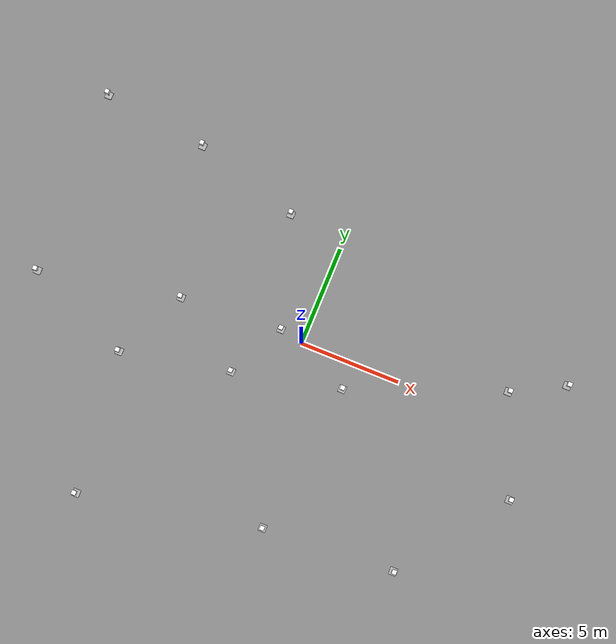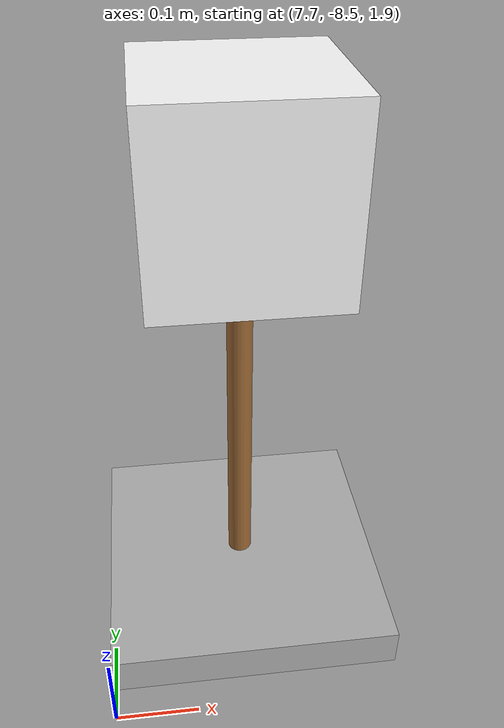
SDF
<sdf version="1.7">
 <world name="marsyard">
  <gravity>0 0 -9.81</gravity>
  <physics name="dart_physics" type="ignored">
   <max_step_size>0.003</max_step_size>
   <real_time_update_rate>333</real_time_update_rate>
   <real_time_factor>1.0</real_time_factor>
  </physics>
  <plugin filename="ignition-gazebo-physics-system" name="ignition::gazebo::systems::Physics"/>
  <plugin filename="ignition-gazebo-user-commands-system" name="ignition::gazebo::systems::UserCommands"/>
  <plugin filename="ignition-gazebo-scene-broadcaster-system" name="ignition::gazebo::systems::SceneBroadcaster"/>
  <plugin filename="ignition-gazebo-contact-system" name="ignition::gazebo::systems::Contact"/>
  <scene>
   <ambient>0.95 0.95 0.95 1</ambient>
   <background>0.70 0.70 0.70 1</background>
   <shadows>false</shadows>
  </scene>
  <light type="directional" name="sun">
   <cast_shadows>false</cast_shadows>
   <pose>0 0 30 0 0 0</pose>
   <diffuse>1 1 1 1</diffuse>
   <specular>0.15 0.15 0.15 1</specular>
   <direction>-0.35 0.1 -0.93</direction>
  </light>
  <model name="ArUco_51">
   <static>true</static>
   <pose>-12.8626 -1.6754 1.1724 0.0000 0.0000 0.0000</pose>
   <include><uri>model://aruco_1</uri></include>
  </model>
  <model name="ArUco_52">
   <static>true</static>
   <pose>-6.9112 -10.5555 1.1742 0.0000 0.0000 0.0000</pose>
   <include><uri>model://aruco_2</uri></include>
  </model>
  <model name="ArUco_53">
   <static>true</static>
   <pose>-7.7269 -3.7522 1.1445 0.0000 0.0000 0.0000</pose>
   <include><uri>model://aruco_3</uri></include>
  </model>
  <model name="ArUco_54">
   <static>true</static>
   <pose>-2.4448 -2.6740 1.4944 0.0000 0.0000 0.0000</pose>
   <include><uri>model://aruco_4</uri></include>
  </model>
  <model name="ArUco_55">
   <static>true</static>
   <pose>1.6623 -8.7646 1.2080 0.0000 0.0000 0.0000</pose>
   <include><uri>model://aruco_5</uri></include>
  </model>
  <model name="ArUco_56">
   <static>true</static>
   <pose>7.8746 -8.3014 1.9224 0.0000 0.0000 0.0000</pose>
   <include><uri>model://aruco_6</uri></include>
  </model>
  <model name="ArUco_57">
   <static>true</static>
   <pose>11.7097 -3.2808 1.2173 0.0000 0.0000 0.0000</pose>
   <include><uri>model://aruco_7</uri></include>
  </model>
  <model name="ArUco_58">
   <static>true</static>
   <pose>12.3320 2.6813 1.2706 0.0000 0.0000 0.0000</pose>
   <include><uri>model://aruco_8</uri></include>
  </model>
  <model name="ArUco_59">
   <static>true</static>
   <pose>9.8693 1.3461 1.4321 0.0000 0.0000 0.0000</pose>
   <include><uri>model://aruco_9</uri></include>
  </model>
  <model name="ArUco_60">
   <static>true</static>
   <pose>2.6570 -1.4837 1.5868 0.0000 0.0000 0.0000</pose>
   <include><uri>model://aruco_10</uri></include>
  </model>
  <model name="ArUco_61">
   <static>true</static>
   <pose>-1.0969 0.1368 0.8390 0.0000 0.0000 0.0000</pose>
   <include><uri>model://aruco_11</uri></include>
  </model>
  <model name="ArUco_62">
   <static>true</static>
   <pose>-2.7377 5.3769 1.3454 0.0000 0.0000 0.0000</pose>
   <include><uri>model://aruco_12</uri></include>
  </model>
  <model name="ArUco_63">
   <static>true</static>
   <pose>-5.9985 -0.3173 1.3624 0.0000 0.0000 0.0000</pose>
   <include><uri>model://aruco_13</uri></include>
  </model>
  <model name="ArUco_64">
   <static>true</static>
   <pose>-7.9646 6.9120 1.2799 0.0000 0.0000 0.0000</pose>
   <include><uri>model://aruco_14</uri></include>
  </model>
  <model name="ArUco_65">
   <static>true</static>
   <pose>-13.2124 7.5601 1.1864 0.0000 0.0000 0.0000</pose>
   <include><uri>model://aruco_15</uri></include>
  </model>
 </world>
</sdf>

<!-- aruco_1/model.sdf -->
<sdf version="1.6">
  <model name="aruco_1">
    <static>true</static>
    <link name="link">
      <!-- Concrete Base -->
      <visual name="base_visual">
        <pose>0 0 0.025 0 0 0</pose>
        <geometry>
          <box>
            <size>0.35 0.35 0.05</size>
          </box>
        </geometry>
        <material>
          <ambient>0.7 0.7 0.7 1</ambient>
          <diffuse>0.7 0.7 0.7 1</diffuse>
        </material>
      </visual>
      <collision name="base_collision">
        <pose>0 0 0.025 0 0 0</pose>
        <geometry>
          <box>
            <size>0.35 0.35 0.05</size>
          </box>
        </geometry>
      </collision>

      <!-- Wooden Pole -->
      <visual name="pole_visual">
        <pose>0 0 0.26 0 0 0</pose>
        <geometry>
          <cylinder>
            <radius>0.015</radius>
            <length>0.42</length>
          </cylinder>
        </geometry>
        <material>
          <ambient>0.6 0.4 0.2 1</ambient>
          <diffuse>0.6 0.4 0.2 1</diffuse>
        </material>
      </visual>
      <collision name="pole_collision">
        <pose>0 0 0.26 0 0 0</pose>
        <geometry>
          <cylinder>
            <radius>0.015</radius>
            <length>0.42</length>
          </cylinder>
        </geometry>
      </collision>

      <!-- Head Box with ArUco Texture -->
      <visual name="head_visual">
        <pose>0 0 0.575 0 0 0</pose>
        <geometry>
          <box>
            <size>0.21 0.21 0.21</size>
          </box>
        </geometry>
        <material>
          <ambient>1 1 1 1</ambient>
          <diffuse>1 1 1 1</diffuse>
          <pbr>
            <metal>
              <albedo_map>model://aruco_1/materials/textures/marker_1.png</albedo_map>
            </metal>
          </pbr>
        </material>
      </visual>
      <collision name="head_collision">
        <pose>0 0 0.575 0 0 0</pose>
        <geometry>
          <box>
            <size>0.21 0.21 0.21</size>
          </box>
        </geometry>
      </collision>
    </link>
  </model>
</sdf>

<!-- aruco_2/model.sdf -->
<sdf version="1.6">
  <model name="aruco_2">
    <static>true</static>
    <link name="link">
      <!-- Concrete Base -->
      <visual name="base_visual">
        <pose>0 0 0.025 0 0 0</pose>
        <geometry>
          <box>
            <size>0.35 0.35 0.05</size>
          </box>
        </geometry>
        <material>
          <ambient>0.7 0.7 0.7 1</ambient>
          <diffuse>0.7 0.7 0.7 1</diffuse>
        </material>
      </visual>
      <collision name="base_collision">
        <pose>0 0 0.025 0 0 0</pose>
        <geometry>
          <box>
            <size>0.35 0.35 0.05</size>
          </box>
        </geometry>
      </collision>

      <!-- Wooden Pole -->
      <visual name="pole_visual">
        <pose>0 0 0.26 0 0 0</pose>
        <geometry>
          <cylinder>
            <radius>0.015</radius>
            <length>0.42</length>
          </cylinder>
        </geometry>
        <material>
          <ambient>0.6 0.4 0.2 1</ambient>
          <diffuse>0.6 0.4 0.2 1</diffuse>
        </material>
      </visual>
      <collision name="pole_collision">
        <pose>0 0 0.26 0 0 0</pose>
        <geometry>
          <cylinder>
            <radius>0.015</radius>
            <length>0.42</length>
          </cylinder>
        </geometry>
      </collision>

      <!-- Head Box with ArUco Texture -->
      <visual name="head_visual">
        <pose>0 0 0.575 0 0 0</pose>
        <geometry>
          <box>
            <size>0.21 0.21 0.21</size>
          </box>
        </geometry>
        <material>
          <ambient>1 1 1 1</ambient>
          <diffuse>1 1 1 1</diffuse>
          <pbr>
            <metal>
              <albedo_map>model://aruco_2/materials/textures/marker_2.png</albedo_map>
            </metal>
          </pbr>
        </material>
      </visual>
      <collision name="head_collision">
        <pose>0 0 0.575 0 0 0</pose>
        <geometry>
          <box>
            <size>0.21 0.21 0.21</size>
          </box>
        </geometry>
      </collision>
    </link>
  </model>
</sdf>

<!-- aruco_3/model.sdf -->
<sdf version="1.6">
  <model name="aruco_3">
    <static>true</static>
    <link name="link">
      <!-- Concrete Base -->
      <visual name="base_visual">
        <pose>0 0 0.025 0 0 0</pose>
        <geometry>
          <box>
            <size>0.35 0.35 0.05</size>
          </box>
        </geometry>
        <material>
          <ambient>0.7 0.7 0.7 1</ambient>
          <diffuse>0.7 0.7 0.7 1</diffuse>
        </material>
      </visual>
      <collision name="base_collision">
        <pose>0 0 0.025 0 0 0</pose>
        <geometry>
          <box>
            <size>0.35 0.35 0.05</size>
          </box>
        </geometry>
      </collision>

      <!-- Wooden Pole -->
      <visual name="pole_visual">
        <pose>0 0 0.26 0 0 0</pose>
        <geometry>
          <cylinder>
            <radius>0.015</radius>
            <length>0.42</length>
          </cylinder>
        </geometry>
        <material>
          <ambient>0.6 0.4 0.2 1</ambient>
          <diffuse>0.6 0.4 0.2 1</diffuse>
        </material>
      </visual>
      <collision name="pole_collision">
        <pose>0 0 0.26 0 0 0</pose>
        <geometry>
          <cylinder>
            <radius>0.015</radius>
            <length>0.42</length>
          </cylinder>
        </geometry>
      </collision>

      <!-- Head Box with ArUco Texture -->
      <visual name="head_visual">
        <pose>0 0 0.575 0 0 0</pose>
        <geometry>
          <box>
            <size>0.21 0.21 0.21</size>
          </box>
        </geometry>
        <material>
          <ambient>1 1 1 1</ambient>
          <diffuse>1 1 1 1</diffuse>
          <pbr>
            <metal>
              <albedo_map>model://aruco_3/materials/textures/marker_3.png</albedo_map>
            </metal>
          </pbr>
        </material>
      </visual>
      <collision name="head_collision">
        <pose>0 0 0.575 0 0 0</pose>
        <geometry>
          <box>
            <size>0.21 0.21 0.21</size>
          </box>
        </geometry>
      </collision>
    </link>
  </model>
</sdf>

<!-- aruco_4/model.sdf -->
<sdf version="1.6">
  <model name="aruco_4">
    <static>true</static>
    <link name="link">
      <!-- Concrete Base -->
      <visual name="base_visual">
        <pose>0 0 0.025 0 0 0</pose>
        <geometry>
          <box>
            <size>0.35 0.35 0.05</size>
          </box>
        </geometry>
        <material>
          <ambient>0.7 0.7 0.7 1</ambient>
          <diffuse>0.7 0.7 0.7 1</diffuse>
        </material>
      </visual>
      <collision name="base_collision">
        <pose>0 0 0.025 0 0 0</pose>
        <geometry>
          <box>
            <size>0.35 0.35 0.05</size>
          </box>
        </geometry>
      </collision>

      <!-- Wooden Pole -->
      <visual name="pole_visual">
        <pose>0 0 0.26 0 0 0</pose>
        <geometry>
          <cylinder>
            <radius>0.015</radius>
            <length>0.42</length>
          </cylinder>
        </geometry>
        <material>
          <ambient>0.6 0.4 0.2 1</ambient>
          <diffuse>0.6 0.4 0.2 1</diffuse>
        </material>
      </visual>
      <collision name="pole_collision">
        <pose>0 0 0.26 0 0 0</pose>
        <geometry>
          <cylinder>
            <radius>0.015</radius>
            <length>0.42</length>
          </cylinder>
        </geometry>
      </collision>

      <!-- Head Box with ArUco Texture -->
      <visual name="head_visual">
        <pose>0 0 0.575 0 0 0</pose>
        <geometry>
          <box>
            <size>0.21 0.21 0.21</size>
          </box>
        </geometry>
        <material>
          <ambient>1 1 1 1</ambient>
          <diffuse>1 1 1 1</diffuse>
          <pbr>
            <metal>
              <albedo_map>model://aruco_4/materials/textures/marker_4.png</albedo_map>
            </metal>
          </pbr>
        </material>
      </visual>
      <collision name="head_collision">
        <pose>0 0 0.575 0 0 0</pose>
        <geometry>
          <box>
            <size>0.21 0.21 0.21</size>
          </box>
        </geometry>
      </collision>
    </link>
  </model>
</sdf>

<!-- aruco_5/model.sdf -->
<sdf version="1.6">
  <model name="aruco_5">
    <static>true</static>
    <link name="link">
      <!-- Concrete Base -->
      <visual name="base_visual">
        <pose>0 0 0.025 0 0 0</pose>
        <geometry>
          <box>
            <size>0.35 0.35 0.05</size>
          </box>
        </geometry>
        <material>
          <ambient>0.7 0.7 0.7 1</ambient>
          <diffuse>0.7 0.7 0.7 1</diffuse>
        </material>
      </visual>
      <collision name="base_collision">
        <pose>0 0 0.025 0 0 0</pose>
        <geometry>
          <box>
            <size>0.35 0.35 0.05</size>
          </box>
        </geometry>
      </collision>

      <!-- Wooden Pole -->
      <visual name="pole_visual">
        <pose>0 0 0.26 0 0 0</pose>
        <geometry>
          <cylinder>
            <radius>0.015</radius>
            <length>0.42</length>
          </cylinder>
        </geometry>
        <material>
          <ambient>0.6 0.4 0.2 1</ambient>
          <diffuse>0.6 0.4 0.2 1</diffuse>
        </material>
      </visual>
      <collision name="pole_collision">
        <pose>0 0 0.26 0 0 0</pose>
        <geometry>
          <cylinder>
            <radius>0.015</radius>
            <length>0.42</length>
          </cylinder>
        </geometry>
      </collision>

      <!-- Head Box with ArUco Texture -->
      <visual name="head_visual">
        <pose>0 0 0.575 0 0 0</pose>
        <geometry>
          <box>
            <size>0.21 0.21 0.21</size>
          </box>
        </geometry>
        <material>
          <ambient>1 1 1 1</ambient>
          <diffuse>1 1 1 1</diffuse>
          <pbr>
            <metal>
              <albedo_map>model://aruco_5/materials/textures/marker_5.png</albedo_map>
            </metal>
          </pbr>
        </material>
      </visual>
      <collision name="head_collision">
        <pose>0 0 0.575 0 0 0</pose>
        <geometry>
          <box>
            <size>0.21 0.21 0.21</size>
          </box>
        </geometry>
      </collision>
    </link>
  </model>
</sdf>

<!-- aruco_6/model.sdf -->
<sdf version="1.6">
  <model name="aruco_6">
    <static>true</static>
    <link name="link">
      <!-- Concrete Base -->
      <visual name="base_visual">
        <pose>0 0 0.025 0 0 0</pose>
        <geometry>
          <box>
            <size>0.35 0.35 0.05</size>
          </box>
        </geometry>
        <material>
          <ambient>0.7 0.7 0.7 1</ambient>
          <diffuse>0.7 0.7 0.7 1</diffuse>
        </material>
      </visual>
      <collision name="base_collision">
        <pose>0 0 0.025 0 0 0</pose>
        <geometry>
          <box>
            <size>0.35 0.35 0.05</size>
          </box>
        </geometry>
      </collision>

      <!-- Wooden Pole -->
      <visual name="pole_visual">
        <pose>0 0 0.26 0 0 0</pose>
        <geometry>
          <cylinder>
            <radius>0.015</radius>
            <length>0.42</length>
          </cylinder>
        </geometry>
        <material>
          <ambient>0.6 0.4 0.2 1</ambient>
          <diffuse>0.6 0.4 0.2 1</diffuse>
        </material>
      </visual>
      <collision name="pole_collision">
        <pose>0 0 0.26 0 0 0</pose>
        <geometry>
          <cylinder>
            <radius>0.015</radius>
            <length>0.42</length>
          </cylinder>
        </geometry>
      </collision>

      <!-- Head Box with ArUco Texture -->
      <visual name="head_visual">
        <pose>0 0 0.575 0 0 0</pose>
        <geometry>
          <box>
            <size>0.21 0.21 0.21</size>
          </box>
        </geometry>
        <material>
          <ambient>1 1 1 1</ambient>
          <diffuse>1 1 1 1</diffuse>
          <pbr>
            <metal>
              <albedo_map>model://aruco_6/materials/textures/marker_6.png</albedo_map>
            </metal>
          </pbr>
        </material>
      </visual>
      <collision name="head_collision">
        <pose>0 0 0.575 0 0 0</pose>
        <geometry>
          <box>
            <size>0.21 0.21 0.21</size>
          </box>
        </geometry>
      </collision>
    </link>
  </model>
</sdf>

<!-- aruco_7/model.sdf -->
<sdf version="1.6">
  <model name="aruco_7">
    <static>true</static>
    <link name="link">
      <visual name="base_visual">
        <pose>0 0 0.025 0 0 0</pose>
        <geometry>
          <box>
            <size>0.35 0.35 0.05</size>
          </box>
        </geometry>
        <material>
          <ambient>0.7 0.7 0.7 1</ambient>
          <diffuse>0.7 0.7 0.7 1</diffuse>
        </material>
      </visual>
      <collision name="base_collision">
        <pose>0 0 0.025 0 0 0</pose>
        <geometry>
          <box>
            <size>0.35 0.35 0.05</size>
          </box>
        </geometry>
      </collision>
      <visual name="pole_visual">
        <pose>0 0 0.228500 0 0 0</pose>
        <geometry>
          <cylinder>
            <radius>0.015</radius>
            <length>0.357000</length>
          </cylinder>
        </geometry>
        <material>
          <ambient>0.6 0.4 0.2 1</ambient>
          <diffuse>0.6 0.4 0.2 1</diffuse>
        </material>
      </visual>
      <collision name="pole_collision">
        <pose>0 0 0.228500 0 0 0</pose>
        <geometry>
          <cylinder>
            <radius>0.015</radius>
            <length>0.357000</length>
          </cylinder>
        </geometry>
      </collision>
      <visual name="head_visual">
        <pose>0 0 0.496250 0 0 0</pose>
        <geometry>
          <box>
            <size>0.21 0.21 0.21</size>
          </box>
        </geometry>
        <material>
          <ambient>1 1 1 1</ambient>
          <diffuse>1 1 1 1</diffuse>
          <pbr>
            <metal>
              <albedo_map>model://aruco_7/materials/textures/marker_7.png</albedo_map>
            </metal>
          </pbr>
        </material>
      </visual>
      <collision name="head_collision">
        <pose>0 0 0.496250 0 0 0</pose>
        <geometry>
          <box>
            <size>0.21 0.21 0.21</size>
          </box>
        </geometry>
      </collision>
    </link>
  </model>
</sdf>

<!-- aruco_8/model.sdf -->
<sdf version="1.6">
  <model name="aruco_8">
    <static>true</static>
    <link name="link">
      <!-- Concrete Base -->
      <visual name="base_visual">
        <pose>0 0 0.025 0 0 0</pose>
        <geometry>
          <box>
            <size>0.35 0.35 0.05</size>
          </box>
        </geometry>
        <material>
          <ambient>0.7 0.7 0.7 1</ambient>
          <diffuse>0.7 0.7 0.7 1</diffuse>
        </material>
      </visual>
      <collision name="base_collision">
        <pose>0 0 0.025 0 0 0</pose>
        <geometry>
          <box>
            <size>0.35 0.35 0.05</size>
          </box>
        </geometry>
      </collision>

      <!-- Wooden Pole -->
      <visual name="pole_visual">
        <pose>0 0 0.26 0 0 0</pose>
        <geometry>
          <cylinder>
            <radius>0.015</radius>
            <length>0.42</length>
          </cylinder>
        </geometry>
        <material>
          <ambient>0.6 0.4 0.2 1</ambient>
          <diffuse>0.6 0.4 0.2 1</diffuse>
        </material>
      </visual>
      <collision name="pole_collision">
        <pose>0 0 0.26 0 0 0</pose>
        <geometry>
          <cylinder>
            <radius>0.015</radius>
            <length>0.42</length>
          </cylinder>
        </geometry>
      </collision>

      <!-- Head Box with ArUco Texture -->
      <visual name="head_visual">
        <pose>0 0 0.575 0 0 0</pose>
        <geometry>
          <box>
            <size>0.21 0.21 0.21</size>
          </box>
        </geometry>
        <material>
          <ambient>1 1 1 1</ambient>
          <diffuse>1 1 1 1</diffuse>
          <pbr>
            <metal>
              <albedo_map>model://aruco_8/materials/textures/marker_8.png</albedo_map>
            </metal>
          </pbr>
        </material>
      </visual>
      <collision name="head_collision">
        <pose>0 0 0.575 0 0 0</pose>
        <geometry>
          <box>
            <size>0.21 0.21 0.21</size>
          </box>
        </geometry>
      </collision>
    </link>
  </model>
</sdf>

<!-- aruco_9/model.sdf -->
<sdf version="1.6">
  <model name="aruco_9">
    <static>true</static>
    <link name="link">
      <!-- Concrete Base -->
      <visual name="base_visual">
        <pose>0 0 0.025 0 0 0</pose>
        <geometry>
          <box>
            <size>0.35 0.35 0.05</size>
          </box>
        </geometry>
        <material>
          <ambient>0.7 0.7 0.7 1</ambient>
          <diffuse>0.7 0.7 0.7 1</diffuse>
        </material>
      </visual>
      <collision name="base_collision">
        <pose>0 0 0.025 0 0 0</pose>
        <geometry>
          <box>
            <size>0.35 0.35 0.05</size>
          </box>
        </geometry>
      </collision>

      <!-- Wooden Pole -->
      <visual name="pole_visual">
        <pose>0 0 0.26 0 0 0</pose>
        <geometry>
          <cylinder>
            <radius>0.015</radius>
            <length>0.42</length>
          </cylinder>
        </geometry>
        <material>
          <ambient>0.6 0.4 0.2 1</ambient>
          <diffuse>0.6 0.4 0.2 1</diffuse>
        </material>
      </visual>
      <collision name="pole_collision">
        <pose>0 0 0.26 0 0 0</pose>
        <geometry>
          <cylinder>
            <radius>0.015</radius>
            <length>0.42</length>
          </cylinder>
        </geometry>
      </collision>

      <!-- Head Box with ArUco Texture -->
      <visual name="head_visual">
        <pose>0 0 0.575 0 0 0</pose>
        <geometry>
          <box>
            <size>0.21 0.21 0.21</size>
          </box>
        </geometry>
        <material>
          <ambient>1 1 1 1</ambient>
          <diffuse>1 1 1 1</diffuse>
          <pbr>
            <metal>
              <albedo_map>model://aruco_9/materials/textures/marker_9.png</albedo_map>
            </metal>
          </pbr>
        </material>
      </visual>
      <collision name="head_collision">
        <pose>0 0 0.575 0 0 0</pose>
        <geometry>
          <box>
            <size>0.21 0.21 0.21</size>
          </box>
        </geometry>
      </collision>
    </link>
  </model>
</sdf>

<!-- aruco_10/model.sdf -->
<sdf version="1.6">
  <model name="aruco_10">
    <static>true</static>
    <link name="link">
      <!-- Concrete Base -->
      <visual name="base_visual">
        <pose>0 0 0.025 0 0 0</pose>
        <geometry>
          <box>
            <size>0.35 0.35 0.05</size>
          </box>
        </geometry>
        <material>
          <ambient>0.7 0.7 0.7 1</ambient>
          <diffuse>0.7 0.7 0.7 1</diffuse>
        </material>
      </visual>
      <collision name="base_collision">
        <pose>0 0 0.025 0 0 0</pose>
        <geometry>
          <box>
            <size>0.35 0.35 0.05</size>
          </box>
        </geometry>
      </collision>

      <!-- Wooden Pole -->
      <visual name="pole_visual">
        <pose>0 0 0.26 0 0 0</pose>
        <geometry>
          <cylinder>
            <radius>0.015</radius>
            <length>0.42</length>
          </cylinder>
        </geometry>
        <material>
          <ambient>0.6 0.4 0.2 1</ambient>
          <diffuse>0.6 0.4 0.2 1</diffuse>
        </material>
      </visual>
      <collision name="pole_collision">
        <pose>0 0 0.26 0 0 0</pose>
        <geometry>
          <cylinder>
            <radius>0.015</radius>
            <length>0.42</length>
          </cylinder>
        </geometry>
      </collision>

      <!-- Head Box with ArUco Texture -->
      <visual name="head_visual">
        <pose>0 0 0.575 0 0 0</pose>
        <geometry>
          <box>
            <size>0.21 0.21 0.21</size>
          </box>
        </geometry>
        <material>
          <ambient>1 1 1 1</ambient>
          <diffuse>1 1 1 1</diffuse>
          <pbr>
            <metal>
              <albedo_map>model://aruco_10/materials/textures/marker_10.png</albedo_map>
            </metal>
          </pbr>
        </material>
      </visual>
      <collision name="head_collision">
        <pose>0 0 0.575 0 0 0</pose>
        <geometry>
          <box>
            <size>0.21 0.21 0.21</size>
          </box>
        </geometry>
      </collision>
    </link>
  </model>
</sdf>

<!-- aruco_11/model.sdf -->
<sdf version="1.6">
  <model name="aruco_11">
    <static>true</static>
    <link name="link">
      <!-- Concrete Base -->
      <visual name="base_visual">
        <pose>0 0 0.025 0 0 0</pose>
        <geometry>
          <box>
            <size>0.35 0.35 0.05</size>
          </box>
        </geometry>
        <material>
          <ambient>0.7 0.7 0.7 1</ambient>
          <diffuse>0.7 0.7 0.7 1</diffuse>
        </material>
      </visual>
      <collision name="base_collision">
        <pose>0 0 0.025 0 0 0</pose>
        <geometry>
          <box>
            <size>0.35 0.35 0.05</size>
          </box>
        </geometry>
      </collision>

      <!-- Wooden Pole -->
      <visual name="pole_visual">
        <pose>0 0 0.26 0 0 0</pose>
        <geometry>
          <cylinder>
            <radius>0.015</radius>
            <length>0.42</length>
          </cylinder>
        </geometry>
        <material>
          <ambient>0.6 0.4 0.2 1</ambient>
          <diffuse>0.6 0.4 0.2 1</diffuse>
        </material>
      </visual>
      <collision name="pole_collision">
        <pose>0 0 0.26 0 0 0</pose>
        <geometry>
          <cylinder>
            <radius>0.015</radius>
            <length>0.42</length>
          </cylinder>
        </geometry>
      </collision>

      <!-- Head Box with ArUco Texture -->
      <visual name="head_visual">
        <pose>0 0 0.575 0 0 0</pose>
        <geometry>
          <box>
            <size>0.21 0.21 0.21</size>
          </box>
        </geometry>
        <material>
          <ambient>1 1 1 1</ambient>
          <diffuse>1 1 1 1</diffuse>
          <pbr>
            <metal>
              <albedo_map>model://aruco_11/materials/textures/marker_11.png</albedo_map>
            </metal>
          </pbr>
        </material>
      </visual>
      <collision name="head_collision">
        <pose>0 0 0.575 0 0 0</pose>
        <geometry>
          <box>
            <size>0.21 0.21 0.21</size>
          </box>
        </geometry>
      </collision>
    </link>
  </model>
</sdf>

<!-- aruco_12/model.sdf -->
<sdf version="1.6">
  <model name="aruco_12">
    <static>true</static>
    <link name="link">
      <!-- Concrete Base -->
      <visual name="base_visual">
        <pose>0 0 0.025 0 0 0</pose>
        <geometry>
          <box>
            <size>0.35 0.35 0.05</size>
          </box>
        </geometry>
        <material>
          <ambient>0.7 0.7 0.7 1</ambient>
          <diffuse>0.7 0.7 0.7 1</diffuse>
        </material>
      </visual>
      <collision name="base_collision">
        <pose>0 0 0.025 0 0 0</pose>
        <geometry>
          <box>
            <size>0.35 0.35 0.05</size>
          </box>
        </geometry>
      </collision>

      <!-- Wooden Pole -->
      <visual name="pole_visual">
        <pose>0 0 0.26 0 0 0</pose>
        <geometry>
          <cylinder>
            <radius>0.015</radius>
            <length>0.42</length>
          </cylinder>
        </geometry>
        <material>
          <ambient>0.6 0.4 0.2 1</ambient>
          <diffuse>0.6 0.4 0.2 1</diffuse>
        </material>
      </visual>
      <collision name="pole_collision">
        <pose>0 0 0.26 0 0 0</pose>
        <geometry>
          <cylinder>
            <radius>0.015</radius>
            <length>0.42</length>
          </cylinder>
        </geometry>
      </collision>

      <!-- Head Box with ArUco Texture -->
      <visual name="head_visual">
        <pose>0 0 0.575 0 0 0</pose>
        <geometry>
          <box>
            <size>0.21 0.21 0.21</size>
          </box>
        </geometry>
        <material>
          <ambient>1 1 1 1</ambient>
          <diffuse>1 1 1 1</diffuse>
          <pbr>
            <metal>
              <albedo_map>model://aruco_12/materials/textures/marker_12.png</albedo_map>
            </metal>
          </pbr>
        </material>
      </visual>
      <collision name="head_collision">
        <pose>0 0 0.575 0 0 0</pose>
        <geometry>
          <box>
            <size>0.21 0.21 0.21</size>
          </box>
        </geometry>
      </collision>
    </link>
  </model>
</sdf>

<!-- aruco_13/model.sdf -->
<sdf version="1.6">
  <model name="aruco_13">
    <static>true</static>
    <link name="link">
      <!-- Concrete Base -->
      <visual name="base_visual">
        <pose>0 0 0.025 0 0 0</pose>
        <geometry>
          <box>
            <size>0.35 0.35 0.05</size>
          </box>
        </geometry>
        <material>
          <ambient>0.7 0.7 0.7 1</ambient>
          <diffuse>0.7 0.7 0.7 1</diffuse>
        </material>
      </visual>
      <collision name="base_collision">
        <pose>0 0 0.025 0 0 0</pose>
        <geometry>
          <box>
            <size>0.35 0.35 0.05</size>
          </box>
        </geometry>
      </collision>

      <!-- Wooden Pole -->
      <visual name="pole_visual">
        <pose>0 0 0.26 0 0 0</pose>
        <geometry>
          <cylinder>
            <radius>0.015</radius>
            <length>0.42</length>
          </cylinder>
        </geometry>
        <material>
          <ambient>0.6 0.4 0.2 1</ambient>
          <diffuse>0.6 0.4 0.2 1</diffuse>
        </material>
      </visual>
      <collision name="pole_collision">
        <pose>0 0 0.26 0 0 0</pose>
        <geometry>
          <cylinder>
            <radius>0.015</radius>
            <length>0.42</length>
          </cylinder>
        </geometry>
      </collision>

      <!-- Head Box with ArUco Texture -->
      <visual name="head_visual">
        <pose>0 0 0.575 0 0 0</pose>
        <geometry>
          <box>
            <size>0.21 0.21 0.21</size>
          </box>
        </geometry>
        <material>
          <ambient>1 1 1 1</ambient>
          <diffuse>1 1 1 1</diffuse>
          <pbr>
            <metal>
              <albedo_map>model://aruco_13/materials/textures/marker_13.png</albedo_map>
            </metal>
          </pbr>
        </material>
      </visual>
      <collision name="head_collision">
        <pose>0 0 0.575 0 0 0</pose>
        <geometry>
          <box>
            <size>0.21 0.21 0.21</size>
          </box>
        </geometry>
      </collision>
    </link>
  </model>
</sdf>

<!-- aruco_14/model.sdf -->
<sdf version="1.6">
  <model name="aruco_14">
    <static>true</static>
    <link name="link">
      <!-- Concrete Base -->
      <visual name="base_visual">
        <pose>0 0 0.025 0 0 0</pose>
        <geometry>
          <box>
            <size>0.35 0.35 0.05</size>
          </box>
        </geometry>
        <material>
          <ambient>0.7 0.7 0.7 1</ambient>
          <diffuse>0.7 0.7 0.7 1</diffuse>
        </material>
      </visual>
      <collision name="base_collision">
        <pose>0 0 0.025 0 0 0</pose>
        <geometry>
          <box>
            <size>0.35 0.35 0.05</size>
          </box>
        </geometry>
      </collision>

      <!-- Wooden Pole -->
      <visual name="pole_visual">
        <pose>0 0 0.26 0 0 0</pose>
        <geometry>
          <cylinder>
            <radius>0.015</radius>
            <length>0.42</length>
          </cylinder>
        </geometry>
        <material>
          <ambient>0.6 0.4 0.2 1</ambient>
          <diffuse>0.6 0.4 0.2 1</diffuse>
        </material>
      </visual>
      <collision name="pole_collision">
        <pose>0 0 0.26 0 0 0</pose>
        <geometry>
          <cylinder>
            <radius>0.015</radius>
            <length>0.42</length>
          </cylinder>
        </geometry>
      </collision>

      <!-- Head Box with ArUco Texture -->
      <visual name="head_visual">
        <pose>0 0 0.575 0 0 0</pose>
        <geometry>
          <box>
            <size>0.21 0.21 0.21</size>
          </box>
        </geometry>
        <material>
          <ambient>1 1 1 1</ambient>
          <diffuse>1 1 1 1</diffuse>
          <pbr>
            <metal>
              <albedo_map>model://aruco_14/materials/textures/marker_14.png</albedo_map>
            </metal>
          </pbr>
        </material>
      </visual>
      <collision name="head_collision">
        <pose>0 0 0.575 0 0 0</pose>
        <geometry>
          <box>
            <size>0.21 0.21 0.21</size>
          </box>
        </geometry>
      </collision>
    </link>
  </model>
</sdf>

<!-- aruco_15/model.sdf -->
<sdf version="1.6">
  <model name="aruco_15">
    <static>true</static>
    <link name="link">
      <!-- Concrete Base -->
      <visual name="base_visual">
        <pose>0 0 0.025 0 0 0</pose>
        <geometry>
          <box>
            <size>0.35 0.35 0.05</size>
          </box>
        </geometry>
        <material>
          <ambient>0.7 0.7 0.7 1</ambient>
          <diffuse>0.7 0.7 0.7 1</diffuse>
        </material>
      </visual>
      <collision name="base_collision">
        <pose>0 0 0.025 0 0 0</pose>
        <geometry>
          <box>
            <size>0.35 0.35 0.05</size>
          </box>
        </geometry>
      </collision>

      <!-- Wooden Pole -->
      <visual name="pole_visual">
        <pose>0 0 0.26 0 0 0</pose>
        <geometry>
          <cylinder>
            <radius>0.015</radius>
            <length>0.42</length>
          </cylinder>
        </geometry>
        <material>
          <ambient>0.6 0.4 0.2 1</ambient>
          <diffuse>0.6 0.4 0.2 1</diffuse>
        </material>
      </visual>
      <collision name="pole_collision">
        <pose>0 0 0.26 0 0 0</pose>
        <geometry>
          <cylinder>
            <radius>0.015</radius>
            <length>0.42</length>
          </cylinder>
        </geometry>
      </collision>

      <!-- Head Box with ArUco Texture -->
      <visual name="head_visual">
        <pose>0 0 0.575 0 0 0</pose>
        <geometry>
          <box>
            <size>0.21 0.21 0.21</size>
          </box>
        </geometry>
        <material>
          <ambient>1 1 1 1</ambient>
          <diffuse>1 1 1 1</diffuse>
          <pbr>
            <metal>
              <albedo_map>model://aruco_15/materials/textures/marker_15.png</albedo_map>
            </metal>
          </pbr>
        </material>
      </visual>
      <collision name="head_collision">
        <pose>0 0 0.575 0 0 0</pose>
        <geometry>
          <box>
            <size>0.21 0.21 0.21</size>
          </box>
        </geometry>
      </collision>
    </link>
  </model>
</sdf>
